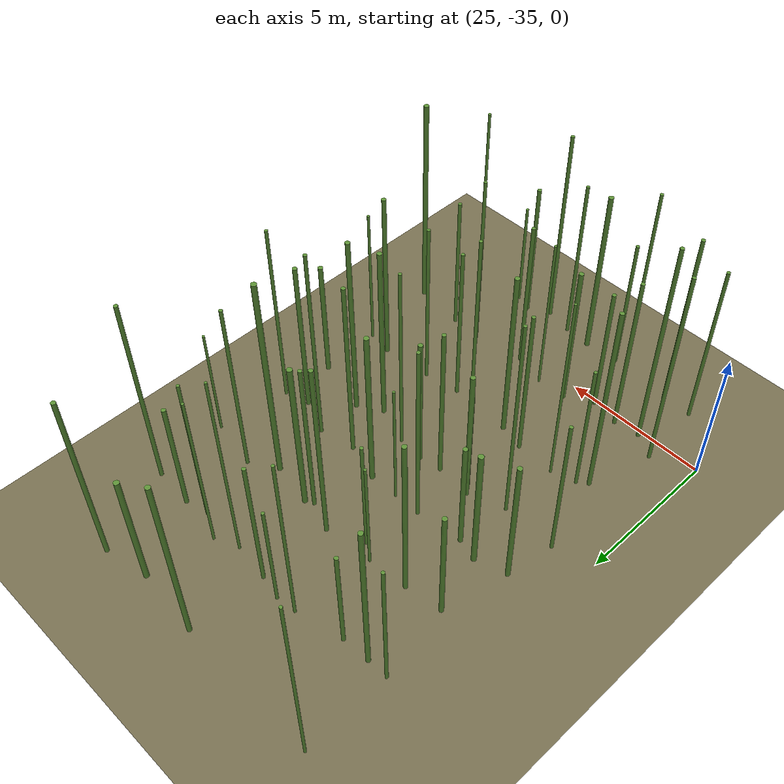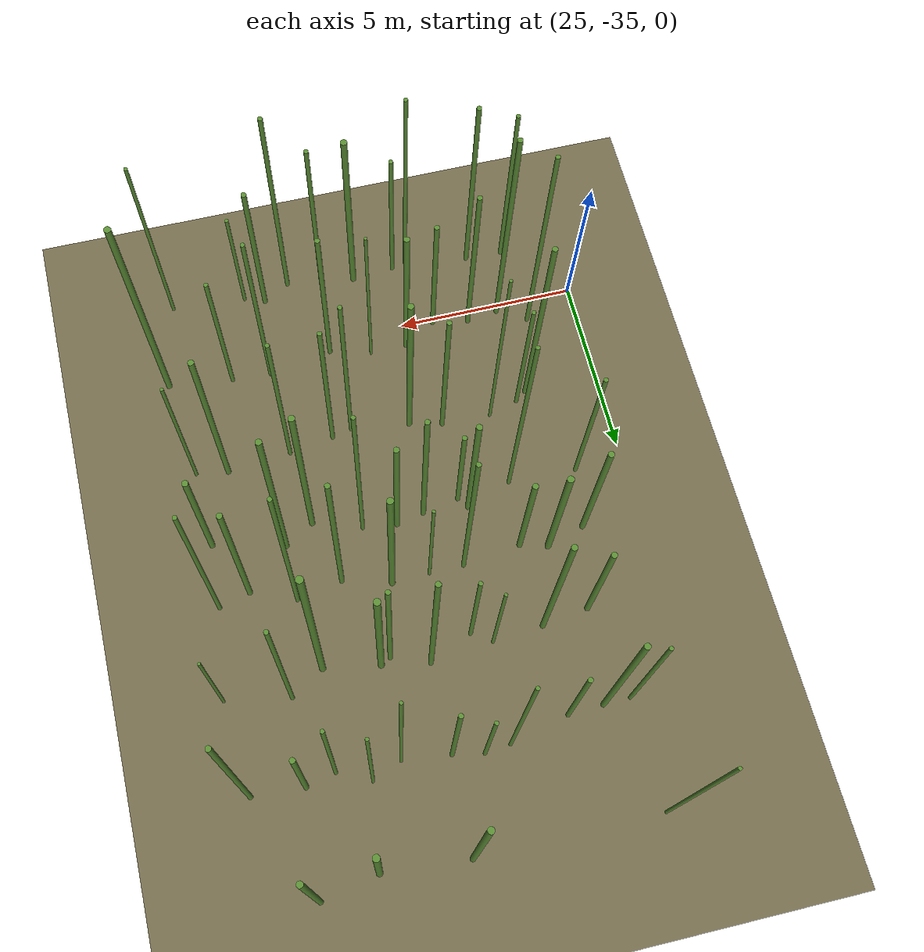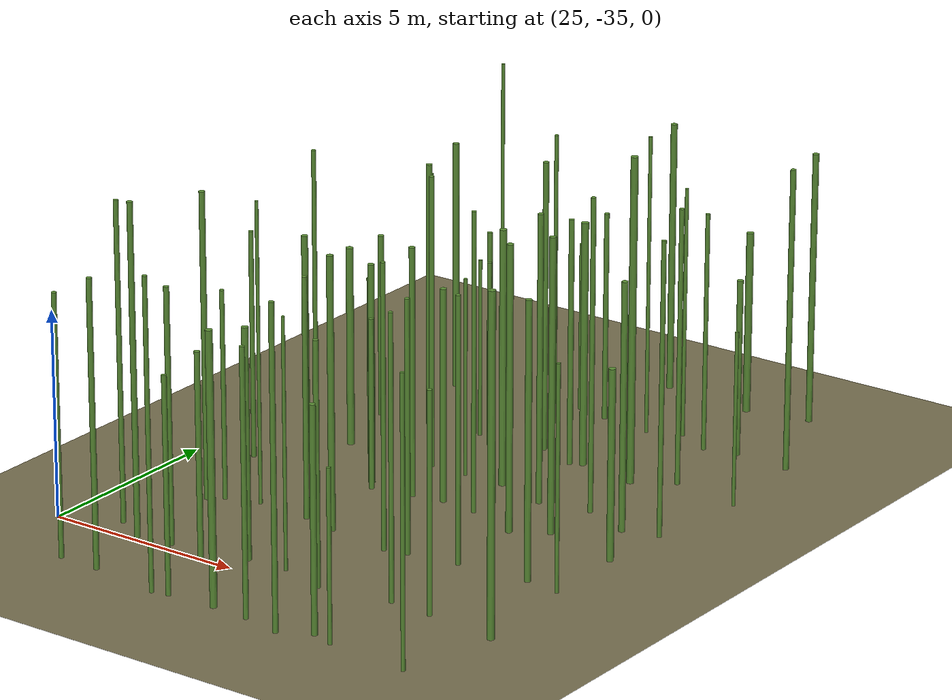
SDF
<sdf version="1.9">
 <world name="bamboo_field">
  <model name="ground_plane">
   <static>true</static>
   <link name="link">
    <collision name="collision">
     <geometry><plane><normal>0 0 1</normal><size>80.0 80.0</size></plane></geometry>
    </collision>
    <visual name="visual">
     <geometry><plane><normal>0 0 1</normal><size>80.0 80.0</size></plane></geometry>
     <material><diffuse>0.45 0.42 0.30 1</diffuse></material>
    </visual>
   </link>
  </model>
  <model name="bamboo_56">
   <static>true</static>
   <pose>26.59189843172362 -36.74230886254977 3.153176086993199 0 0 0</pose>
   <link name="link">
    <collision name="collision">
     <geometry>
      <cylinder><radius>0.05925977166723636</radius><length>6.306352173986398</length></cylinder>
     </geometry>
    </collision>
    <visual name="visual">
     <geometry>
      <cylinder><radius>0.05925977166723636</radius><length>6.306352173986398</length></cylinder>
     </geometry>
     <material><diffuse>0.35 0.55 0.20 1</diffuse><specular>0.1 0.1 0.1 1</specular></material>
    </visual>
   </link>
  </model>
  <model name="bamboo_57">
   <static>true</static>
   <pose>27.6336342432017 -36.769018608130594 3.438859998289691 0 0 0</pose>
   <link name="link">
    <collision name="collision">
     <geometry>
      <cylinder><radius>0.0669225998546396</radius><length>6.877719996579382</length></cylinder>
     </geometry>
    </collision>
    <visual name="visual">
     <geometry>
      <cylinder><radius>0.0669225998546396</radius><length>6.877719996579382</length></cylinder>
     </geometry>
     <material><diffuse>0.35 0.55 0.20 1</diffuse><specular>0.1 0.1 0.1 1</specular></material>
    </visual>
   </link>
  </model>
  <model name="bamboo_58">
   <static>true</static>
   <pose>29.429480835500843 -37.02823297348581 3.696030559012671 0 0 0</pose>
   <link name="link">
    <collision name="collision">
     <geometry>
      <cylinder><radius>0.055695782252917984</radius><length>7.392061118025342</length></cylinder>
     </geometry>
    </collision>
    <visual name="visual">
     <geometry>
      <cylinder><radius>0.055695782252917984</radius><length>7.392061118025342</length></cylinder>
     </geometry>
     <material><diffuse>0.35 0.55 0.20 1</diffuse><specular>0.1 0.1 0.1 1</specular></material>
    </visual>
   </link>
  </model>
  <model name="bamboo_59">
   <static>true</static>
   <pose>29.838468175615947 -36.94414612759265 2.5913104050518943 0 0 0</pose>
   <link name="link">
    <collision name="collision">
     <geometry>
      <cylinder><radius>0.06012001935288623</radius><length>5.1826208101037885</length></cylinder>
     </geometry>
    </collision>
    <visual name="visual">
     <geometry>
      <cylinder><radius>0.06012001935288623</radius><length>5.1826208101037885</length></cylinder>
     </geometry>
     <material><diffuse>0.35 0.55 0.20 1</diffuse><specular>0.1 0.1 0.1 1</specular></material>
    </visual>
   </link>
  </model>
  <model name="bamboo_60">
   <static>true</static>
   <pose>31.03617709676251 -36.8549025120387 3.2310298319027613 0 0 0</pose>
   <link name="link">
    <collision name="collision">
     <geometry>
      <cylinder><radius>0.08514027728662912</radius><length>6.4620596638055225</length></cylinder>
     </geometry>
    </collision>
    <visual name="visual">
     <geometry>
      <cylinder><radius>0.08514027728662912</radius><length>6.4620596638055225</length></cylinder>
     </geometry>
     <material><diffuse>0.35 0.55 0.20 1</diffuse><specular>0.1 0.1 0.1 1</specular></material>
    </visual>
   </link>
  </model>
  <model name="bamboo_61">
   <static>true</static>
   <pose>31.98396849703768 -36.91296682806078 3.159969562391364 0 0 0</pose>
   <link name="link">
    <collision name="collision">
     <geometry>
      <cylinder><radius>0.06149440749949173</radius><length>6.319939124782728</length></cylinder>
     </geometry>
    </collision>
    <visual name="visual">
     <geometry>
      <cylinder><radius>0.06149440749949173</radius><length>6.319939124782728</length></cylinder>
     </geometry>
     <material><diffuse>0.35 0.55 0.20 1</diffuse><specular>0.1 0.1 0.1 1</specular></material>
    </visual>
   </link>
  </model>
  <model name="bamboo_62">
   <static>true</static>
   <pose>32.9597558122562 -37.119674583895055 3.8023616516565086 0 0 0</pose>
   <link name="link">
    <collision name="collision">
     <geometry>
      <cylinder><radius>0.06365930929546632</radius><length>7.604723303313017</length></cylinder>
     </geometry>
    </collision>
    <visual name="visual">
     <geometry>
      <cylinder><radius>0.06365930929546632</radius><length>7.604723303313017</length></cylinder>
     </geometry>
     <material><diffuse>0.35 0.55 0.20 1</diffuse><specular>0.1 0.1 0.1 1</specular></material>
    </visual>
   </link>
  </model>
  <model name="bamboo_63">
   <static>true</static>
   <pose>33.709353120033164 -36.71266186495518 2.670376510819602 0 0 0</pose>
   <link name="link">
    <collision name="collision">
     <geometry>
      <cylinder><radius>0.07164704278828979</radius><length>5.340753021639204</length></cylinder>
     </geometry>
    </collision>
    <visual name="visual">
     <geometry>
      <cylinder><radius>0.07164704278828979</radius><length>5.340753021639204</length></cylinder>
     </geometry>
     <material><diffuse>0.35 0.55 0.20 1</diffuse><specular>0.1 0.1 0.1 1</specular></material>
    </visual>
   </link>
  </model>
  <model name="bamboo_64">
   <static>true</static>
   <pose>34.27696474393521 -36.90586312028053 2.0488507754536527 0 0 0</pose>
   <link name="link">
    <collision name="collision">
     <geometry>
      <cylinder><radius>0.04995649663632883</radius><length>4.097701550907305</length></cylinder>
     </geometry>
    </collision>
    <visual name="visual">
     <geometry>
      <cylinder><radius>0.04995649663632883</radius><length>4.097701550907305</length></cylinder>
     </geometry>
     <material><diffuse>0.35 0.55 0.20 1</diffuse><specular>0.1 0.1 0.1 1</specular></material>
    </visual>
   </link>
  </model>
  <model name="bamboo_65">
   <static>true</static>
   <pose>36.35731046363665 -37.06766945352879 3.39270850098101 0 0 0</pose>
   <link name="link">
    <collision name="collision">
     <geometry>
      <cylinder><radius>0.04972176183698546</radius><length>6.78541700196202</length></cylinder>
     </geometry>
    </collision>
    <visual name="visual">
     <geometry>
      <cylinder><radius>0.04972176183698546</radius><length>6.78541700196202</length></cylinder>
     </geometry>
     <material><diffuse>0.35 0.55 0.20 1</diffuse><specular>0.1 0.1 0.1 1</specular></material>
    </visual>
   </link>
  </model>
  <model name="bamboo_123">
   <static>true</static>
   <pose>26.41332882305101 -34.371516896592496 3.86849678736504 0 0 0</pose>
   <link name="link">
    <collision name="collision">
     <geometry>
      <cylinder><radius>0.060747121177567254</radius><length>7.73699357473008</length></cylinder>
     </geometry>
    </collision>
    <visual name="visual">
     <geometry>
      <cylinder><radius>0.060747121177567254</radius><length>7.73699357473008</length></cylinder>
     </geometry>
     <material><diffuse>0.35 0.55 0.20 1</diffuse><specular>0.1 0.1 0.1 1</specular></material>
    </visual>
   </link>
  </model>
  <model name="bamboo_124">
   <static>true</static>
   <pose>27.213796285956374 -34.84188473495445 3.9978046664586775 0 0 0</pose>
   <link name="link">
    <collision name="collision">
     <geometry>
      <cylinder><radius>0.06934688612070805</radius><length>7.995609332917355</length></cylinder>
     </geometry>
    </collision>
    <visual name="visual">
     <geometry>
      <cylinder><radius>0.06934688612070805</radius><length>7.995609332917355</length></cylinder>
     </geometry>
     <material><diffuse>0.35 0.55 0.20 1</diffuse><specular>0.1 0.1 0.1 1</specular></material>
    </visual>
   </link>
  </model>
  <model name="bamboo_125">
   <static>true</static>
   <pose>28.105221506185483 -34.720657382662075 3.086860125917346 0 0 0</pose>
   <link name="link">
    <collision name="collision">
     <geometry>
      <cylinder><radius>0.06759587085354055</radius><length>6.173720251834692</length></cylinder>
     </geometry>
    </collision>
    <visual name="visual">
     <geometry>
      <cylinder><radius>0.06759587085354055</radius><length>6.173720251834692</length></cylinder>
     </geometry>
     <material><diffuse>0.35 0.55 0.20 1</diffuse><specular>0.1 0.1 0.1 1</specular></material>
    </visual>
   </link>
  </model>
  <model name="bamboo_126">
   <static>true</static>
   <pose>29.104822356431256 -34.915348418454286 2.4671248921157862 0 0 0</pose>
   <link name="link">
    <collision name="collision">
     <geometry>
      <cylinder><radius>0.06858988209924505</radius><length>4.9342497842315725</length></cylinder>
     </geometry>
    </collision>
    <visual name="visual">
     <geometry>
      <cylinder><radius>0.06858988209924505</radius><length>4.9342497842315725</length></cylinder>
     </geometry>
     <material><diffuse>0.35 0.55 0.20 1</diffuse><specular>0.1 0.1 0.1 1</specular></material>
    </visual>
   </link>
  </model>
  <model name="bamboo_127">
   <static>true</static>
   <pose>30.02440546512703 -34.37137824162571 2.7721575049819647 0 0 0</pose>
   <link name="link">
    <collision name="collision">
     <geometry>
      <cylinder><radius>0.08057044512824385</radius><length>5.544315009963929</length></cylinder>
     </geometry>
    </collision>
    <visual name="visual">
     <geometry>
      <cylinder><radius>0.08057044512824385</radius><length>5.544315009963929</length></cylinder>
     </geometry>
     <material><diffuse>0.35 0.55 0.20 1</diffuse><specular>0.1 0.1 0.1 1</specular></material>
    </visual>
   </link>
  </model>
  <model name="bamboo_128">
   <static>true</static>
   <pose>31.065276840468464 -34.33711130846885 3.0045823002659318 0 0 0</pose>
   <link name="link">
    <collision name="collision">
     <geometry>
      <cylinder><radius>0.04185098056727881</radius><length>6.0091646005318635</length></cylinder>
     </geometry>
    </collision>
    <visual name="visual">
     <geometry>
      <cylinder><radius>0.04185098056727881</radius><length>6.0091646005318635</length></cylinder>
     </geometry>
     <material><diffuse>0.35 0.55 0.20 1</diffuse><specular>0.1 0.1 0.1 1</specular></material>
    </visual>
   </link>
  </model>
  <model name="bamboo_129">
   <static>true</static>
   <pose>32.20753736887294 -34.658916493999946 2.9138561489484847 0 0 0</pose>
   <link name="link">
    <collision name="collision">
     <geometry>
      <cylinder><radius>0.06629755434037807</radius><length>5.827712297896969</length></cylinder>
     </geometry>
    </collision>
    <visual name="visual">
     <geometry>
      <cylinder><radius>0.06629755434037807</radius><length>5.827712297896969</length></cylinder>
     </geometry>
     <material><diffuse>0.35 0.55 0.20 1</diffuse><specular>0.1 0.1 0.1 1</specular></material>
    </visual>
   </link>
  </model>
  <model name="bamboo_130">
   <static>true</static>
   <pose>34.00642111734396 -34.34966582317691 3.385409197173764 0 0 0</pose>
   <link name="link">
    <collision name="collision">
     <geometry>
      <cylinder><radius>0.056928061702571586</radius><length>6.770818394347528</length></cylinder>
     </geometry>
    </collision>
    <visual name="visual">
     <geometry>
      <cylinder><radius>0.056928061702571586</radius><length>6.770818394347528</length></cylinder>
     </geometry>
     <material><diffuse>0.35 0.55 0.20 1</diffuse><specular>0.1 0.1 0.1 1</specular></material>
    </visual>
   </link>
  </model>
  <model name="bamboo_131">
   <static>true</static>
   <pose>35.09557419282091 -34.414320261288346 2.6333223078667993 0 0 0</pose>
   <link name="link">
    <collision name="collision">
     <geometry>
      <cylinder><radius>0.05900046987613275</radius><length>5.266644615733599</length></cylinder>
     </geometry>
    </collision>
    <visual name="visual">
     <geometry>
      <cylinder><radius>0.05900046987613275</radius><length>5.266644615733599</length></cylinder>
     </geometry>
     <material><diffuse>0.35 0.55 0.20 1</diffuse><specular>0.1 0.1 0.1 1</specular></material>
    </visual>
   </link>
  </model>
  <model name="bamboo_132">
   <static>true</static>
   <pose>36.89152995771341 -34.64212149747621 3.9948518459124305 0 0 0</pose>
   <link name="link">
    <collision name="collision">
     <geometry>
      <cylinder><radius>0.08604645493901483</radius><length>7.989703691824861</length></cylinder>
     </geometry>
    </collision>
    <visual name="visual">
     <geometry>
      <cylinder><radius>0.08604645493901483</radius><length>7.989703691824861</length></cylinder>
     </geometry>
     <material><diffuse>0.35 0.55 0.20 1</diffuse><specular>0.1 0.1 0.1 1</specular></material>
    </visual>
   </link>
  </model>
  <model name="bamboo_190">
   <static>true</static>
   <pose>27.06892133610609 -32.16269084478788 3.7284937496628325 0 0 0</pose>
   <link name="link">
    <collision name="collision">
     <geometry>
      <cylinder><radius>0.07122608897209473</radius><length>7.456987499325665</length></cylinder>
     </geometry>
    </collision>
    <visual name="visual">
     <geometry>
      <cylinder><radius>0.07122608897209473</radius><length>7.456987499325665</length></cylinder>
     </geometry>
     <material><diffuse>0.35 0.55 0.20 1</diffuse><specular>0.1 0.1 0.1 1</specular></material>
    </visual>
   </link>
  </model>
  <model name="bamboo_191">
   <static>true</static>
   <pose>27.396504138823705 -31.91322520606019 2.5493473349723184 0 0 0</pose>
   <link name="link">
    <collision name="collision">
     <geometry>
      <cylinder><radius>0.055141021756950646</radius><length>5.098694669944637</length></cylinder>
     </geometry>
    </collision>
    <visual name="visual">
     <geometry>
      <cylinder><radius>0.055141021756950646</radius><length>5.098694669944637</length></cylinder>
     </geometry>
     <material><diffuse>0.35 0.55 0.20 1</diffuse><specular>0.1 0.1 0.1 1</specular></material>
    </visual>
   </link>
  </model>
  <model name="bamboo_192">
   <static>true</static>
   <pose>28.235058495738496 -31.663386002015365 3.6633932633262427 0 0 0</pose>
   <link name="link">
    <collision name="collision">
     <geometry>
      <cylinder><radius>0.04284450254169762</radius><length>7.326786526652485</length></cylinder>
     </geometry>
    </collision>
    <visual name="visual">
     <geometry>
      <cylinder><radius>0.04284450254169762</radius><length>7.326786526652485</length></cylinder>
     </geometry>
     <material><diffuse>0.35 0.55 0.20 1</diffuse><specular>0.1 0.1 0.1 1</specular></material>
    </visual>
   </link>
  </model>
  <model name="bamboo_193">
   <static>true</static>
   <pose>29.61148560343633 -31.714088567677283 2.925423317854545 0 0 0</pose>
   <link name="link">
    <collision name="collision">
     <geometry>
      <cylinder><radius>0.06535339086669775</radius><length>5.85084663570909</length></cylinder>
     </geometry>
    </collision>
    <visual name="visual">
     <geometry>
      <cylinder><radius>0.06535339086669775</radius><length>5.85084663570909</length></cylinder>
     </geometry>
     <material><diffuse>0.35 0.55 0.20 1</diffuse><specular>0.1 0.1 0.1 1</specular></material>
    </visual>
   </link>
  </model>
  <model name="bamboo_194">
   <static>true</static>
   <pose>30.506883583738535 -31.935420706202883 3.3036749092972197 0 0 0</pose>
   <link name="link">
    <collision name="collision">
     <geometry>
      <cylinder><radius>0.08049079588489855</radius><length>6.6073498185944395</length></cylinder>
     </geometry>
    </collision>
    <visual name="visual">
     <geometry>
      <cylinder><radius>0.08049079588489855</radius><length>6.6073498185944395</length></cylinder>
     </geometry>
     <material><diffuse>0.35 0.55 0.20 1</diffuse><specular>0.1 0.1 0.1 1</specular></material>
    </visual>
   </link>
  </model>
  <model name="bamboo_195">
   <static>true</static>
   <pose>32.13674433235932 -32.147569787757575 3.4286310983349253 0 0 0</pose>
   <link name="link">
    <collision name="collision">
     <geometry>
      <cylinder><radius>0.05717188879191338</radius><length>6.857262196669851</length></cylinder>
     </geometry>
    </collision>
    <visual name="visual">
     <geometry>
      <cylinder><radius>0.05717188879191338</radius><length>6.857262196669851</length></cylinder>
     </geometry>
     <material><diffuse>0.35 0.55 0.20 1</diffuse><specular>0.1 0.1 0.1 1</specular></material>
    </visual>
   </link>
  </model>
  <model name="bamboo_196">
   <static>true</static>
   <pose>32.693779866335035 -32.0073646382921 3.045496070531091 0 0 0</pose>
   <link name="link">
    <collision name="collision">
     <geometry>
      <cylinder><radius>0.06197108958813122</radius><length>6.090992141062182</length></cylinder>
     </geometry>
    </collision>
    <visual name="visual">
     <geometry>
      <cylinder><radius>0.06197108958813122</radius><length>6.090992141062182</length></cylinder>
     </geometry>
     <material><diffuse>0.35 0.55 0.20 1</diffuse><specular>0.1 0.1 0.1 1</specular></material>
    </visual>
   </link>
  </model>
  <model name="bamboo_197">
   <static>true</static>
   <pose>33.94827380428829 -31.81524727588452 3.195771724765979 0 0 0</pose>
   <link name="link">
    <collision name="collision">
     <geometry>
      <cylinder><radius>0.05691835734207098</radius><length>6.391543449531958</length></cylinder>
     </geometry>
    </collision>
    <visual name="visual">
     <geometry>
      <cylinder><radius>0.05691835734207098</radius><length>6.391543449531958</length></cylinder>
     </geometry>
     <material><diffuse>0.35 0.55 0.20 1</diffuse><specular>0.1 0.1 0.1 1</specular></material>
    </visual>
   </link>
  </model>
  <model name="bamboo_198">
   <static>true</static>
   <pose>35.72797131985622 -31.657065262320657 3.3131281728209556 0 0 0</pose>
   <link name="link">
    <collision name="collision">
     <geometry>
      <cylinder><radius>0.07618668275012308</radius><length>6.626256345641911</length></cylinder>
     </geometry>
    </collision>
    <visual name="visual">
     <geometry>
      <cylinder><radius>0.07618668275012308</radius><length>6.626256345641911</length></cylinder>
     </geometry>
     <material><diffuse>0.35 0.55 0.20 1</diffuse><specular>0.1 0.1 0.1 1</specular></material>
    </visual>
   </link>
  </model>
  <model name="bamboo_199">
   <static>true</static>
   <pose>36.604263801650795 -31.779425051794718 2.6996415750716887 0 0 0</pose>
   <link name="link">
    <collision name="collision">
     <geometry>
      <cylinder><radius>0.04707141902921589</radius><length>5.399283150143377</length></cylinder>
     </geometry>
    </collision>
    <visual name="visual">
     <geometry>
      <cylinder><radius>0.04707141902921589</radius><length>5.399283150143377</length></cylinder>
     </geometry>
     <material><diffuse>0.35 0.55 0.20 1</diffuse><specular>0.1 0.1 0.1 1</specular></material>
    </visual>
   </link>
  </model>
  <model name="bamboo_259">
   <static>true</static>
   <pose>26.341947357377364 -29.52273920398375 2.801163242029513 0 0 0</pose>
   <link name="link">
    <collision name="collision">
     <geometry>
      <cylinder><radius>0.05829686762587815</radius><length>5.602326484059026</length></cylinder>
     </geometry>
    </collision>
    <visual name="visual">
     <geometry>
      <cylinder><radius>0.05829686762587815</radius><length>5.602326484059026</length></cylinder>
     </geometry>
     <material><diffuse>0.35 0.55 0.20 1</diffuse><specular>0.1 0.1 0.1 1</specular></material>
    </visual>
   </link>
  </model>
  <model name="bamboo_260">
   <static>true</static>
   <pose>28.242020637041588 -29.57583020149864 3.978181401241445 0 0 0</pose>
   <link name="link">
    <collision name="collision">
     <geometry><cylinder><radius>0.0539860338811991</radius><length>7.95636280248289</length></cylinder></geometry>
    </collision>
    <visual name="visual">
     <geometry><cylinder><radius>0.0539860338811991</radius><length>7.95636280248289</length></cylinder></geometry>
     <material><diffuse>0.35 0.55 0.20 1</diffuse><specular>0.1 0.1 0.1 1</specular></material>
    </visual>
   </link>
  </model>
  <model name="bamboo_261">
   <static>true</static>
   <pose>29.513038711992664 -29.130522294700196 2.6781705999051306 0 0 0</pose>
   <link name="link">
    <collision name="collision">
     <geometry>
      <cylinder><radius>0.0797448614190473</radius><length>5.356341199810261</length></cylinder>
     </geometry>
    </collision>
    <visual name="visual">
     <geometry>
      <cylinder><radius>0.0797448614190473</radius><length>5.356341199810261</length></cylinder>
     </geometry>
     <material><diffuse>0.35 0.55 0.20 1</diffuse><specular>0.1 0.1 0.1 1</specular></material>
    </visual>
   </link>
  </model>
  <model name="bamboo_262">
   <static>true</static>
   <pose>29.731323329242148 -29.425869421558215 2.0906067049341495 0 0 0</pose>
   <link name="link">
    <collision name="collision">
     <geometry>
      <cylinder><radius>0.0650038951785322</radius><length>4.181213409868299</length></cylinder>
     </geometry>
    </collision>
    <visual name="visual">
     <geometry>
      <cylinder><radius>0.0650038951785322</radius><length>4.181213409868299</length></cylinder>
     </geometry>
     <material><diffuse>0.35 0.55 0.20 1</diffuse><specular>0.1 0.1 0.1 1</specular></material>
    </visual>
   </link>
  </model>
  <model name="bamboo_263">
   <static>true</static>
   <pose>30.754471621248527 -29.229850230559876 3.031011464294508 0 0 0</pose>
   <link name="link">
    <collision name="collision">
     <geometry>
      <cylinder><radius>0.0703130261201902</radius><length>6.062022928589016</length></cylinder>
     </geometry>
    </collision>
    <visual name="visual">
     <geometry>
      <cylinder><radius>0.0703130261201902</radius><length>6.062022928589016</length></cylinder>
     </geometry>
     <material><diffuse>0.35 0.55 0.20 1</diffuse><specular>0.1 0.1 0.1 1</specular></material>
    </visual>
   </link>
  </model>
  <model name="bamboo_264">
   <static>true</static>
   <pose>31.525357762759906 -29.079195345134988 2.5984686850566368 0 0 0</pose>
   <link name="link">
    <collision name="collision">
     <geometry>
      <cylinder><radius>0.0769659680286802</radius><length>5.1969373701132735</length></cylinder>
     </geometry>
    </collision>
    <visual name="visual">
     <geometry>
      <cylinder><radius>0.0769659680286802</radius><length>5.1969373701132735</length></cylinder>
     </geometry>
     <material><diffuse>0.35 0.55 0.20 1</diffuse><specular>0.1 0.1 0.1 1</specular></material>
    </visual>
   </link>
  </model>
  <model name="bamboo_265">
   <static>true</static>
   <pose>32.46068274511012 -29.18733344057404 3.6314976664876486 0 0 0</pose>
   <link name="link">
    <collision name="collision">
     <geometry>
      <cylinder><radius>0.054989528236870686</radius><length>7.262995332975297</length></cylinder>
     </geometry>
    </collision>
    <visual name="visual">
     <geometry>
      <cylinder><radius>0.054989528236870686</radius><length>7.262995332975297</length></cylinder>
     </geometry>
     <material><diffuse>0.35 0.55 0.20 1</diffuse><specular>0.1 0.1 0.1 1</specular></material>
    </visual>
   </link>
  </model>
  <model name="bamboo_266">
   <static>true</static>
   <pose>33.77642204651768 -29.640344906830467 3.4506484251037106 0 0 0</pose>
   <link name="link">
    <collision name="collision">
     <geometry>
      <cylinder><radius>0.07983774069650736</radius><length>6.901296850207421</length></cylinder>
     </geometry>
    </collision>
    <visual name="visual">
     <geometry>
      <cylinder><radius>0.07983774069650736</radius><length>6.901296850207421</length></cylinder>
     </geometry>
     <material><diffuse>0.35 0.55 0.20 1</diffuse><specular>0.1 0.1 0.1 1</specular></material>
    </visual>
   </link>
  </model>
  <model name="bamboo_267">
   <static>true</static>
   <pose>34.588971653414696 -29.154017836697736 3.5523240503441444 0 0 0</pose>
   <link name="link">
    <collision name="collision">
     <geometry>
      <cylinder><radius>0.07914519957157107</radius><length>7.104648100688289</length></cylinder>
     </geometry>
    </collision>
    <visual name="visual">
     <geometry>
      <cylinder><radius>0.07914519957157107</radius><length>7.104648100688289</length></cylinder>
     </geometry>
     <material><diffuse>0.35 0.55 0.20 1</diffuse><specular>0.1 0.1 0.1 1</specular></material>
    </visual>
   </link>
  </model>
  <model name="bamboo_268">
   <static>true</static>
   <pose>36.54615581012245 -29.636898555965683 2.295551416600664 0 0 0</pose>
   <link name="link">
    <collision name="collision">
     <geometry>
      <cylinder><radius>0.08205835624791322</radius><length>4.591102833201328</length></cylinder>
     </geometry>
    </collision>
    <visual name="visual">
     <geometry>
      <cylinder><radius>0.08205835624791322</radius><length>4.591102833201328</length></cylinder>
     </geometry>
     <material><diffuse>0.35 0.55 0.20 1</diffuse><specular>0.1 0.1 0.1 1</specular></material>
    </visual>
   </link>
  </model>
  <model name="bamboo_333">
   <static>true</static>
   <pose>26.615359106754195 -27.867176359727672 2.5346494733532716 0 0 0</pose>
   <link name="link">
    <collision name="collision">
     <geometry>
      <cylinder><radius>0.08076071953566413</radius><length>5.069298946706543</length></cylinder>
     </geometry>
    </collision>
    <visual name="visual">
     <geometry>
      <cylinder><radius>0.08076071953566413</radius><length>5.069298946706543</length></cylinder>
     </geometry>
     <material><diffuse>0.35 0.55 0.20 1</diffuse><specular>0.1 0.1 0.1 1</specular></material>
    </visual>
   </link>
  </model>
  <model name="bamboo_334">
   <static>true</static>
   <pose>27.678771712784368 -27.534805496730176 2.451714505254844 0 0 0</pose>
   <link name="link">
    <collision name="collision">
     <geometry>
      <cylinder><radius>0.08951165158198636</radius><length>4.903429010509688</length></cylinder>
     </geometry>
    </collision>
    <visual name="visual">
     <geometry>
      <cylinder><radius>0.08951165158198636</radius><length>4.903429010509688</length></cylinder>
     </geometry>
     <material><diffuse>0.35 0.55 0.20 1</diffuse><specular>0.1 0.1 0.1 1</specular></material>
    </visual>
   </link>
  </model>
  <model name="bamboo_335">
   <static>true</static>
   <pose>28.42692167834663 -27.741421460481465 2.187001010854219 0 0 0</pose>
   <link name="link">
    <collision name="collision">
     <geometry>
      <cylinder><radius>0.07797929250884224</radius><length>4.374002021708438</length></cylinder>
     </geometry>
    </collision>
    <visual name="visual">
     <geometry>
      <cylinder><radius>0.07797929250884224</radius><length>4.374002021708438</length></cylinder>
     </geometry>
     <material><diffuse>0.35 0.55 0.20 1</diffuse><specular>0.1 0.1 0.1 1</specular></material>
    </visual>
   </link>
  </model>
  <model name="bamboo_336">
   <static>true</static>
   <pose>30.04853590808449 -27.52774024879768 3.5687526215802223 0 0 0</pose>
   <link name="link">
    <collision name="collision">
     <geometry>
      <cylinder><radius>0.06169548259858311</radius><length>7.137505243160445</length></cylinder>
     </geometry>
    </collision>
    <visual name="visual">
     <geometry>
      <cylinder><radius>0.06169548259858311</radius><length>7.137505243160445</length></cylinder>
     </geometry>
     <material><diffuse>0.35 0.55 0.20 1</diffuse><specular>0.1 0.1 0.1 1</specular></material>
    </visual>
   </link>
  </model>
  <model name="bamboo_337">
   <static>true</static>
   <pose>30.998262826114182 -27.507024453228105 2.4228341117690944 0 0 0</pose>
   <link name="link">
    <collision name="collision">
     <geometry>
      <cylinder><radius>0.04212758788085225</radius><length>4.845668223538189</length></cylinder>
     </geometry>
    </collision>
    <visual name="visual">
     <geometry>
      <cylinder><radius>0.04212758788085225</radius><length>4.845668223538189</length></cylinder>
     </geometry>
     <material><diffuse>0.35 0.55 0.20 1</diffuse><specular>0.1 0.1 0.1 1</specular></material>
    </visual>
   </link>
  </model>
  <model name="bamboo_338">
   <static>true</static>
   <pose>32.03355158784286 -27.478176015273988 3.1270197280959673 0 0 0</pose>
   <link name="link">
    <collision name="collision">
     <geometry>
      <cylinder><radius>0.08496558254325043</radius><length>6.254039456191935</length></cylinder>
     </geometry>
    </collision>
    <visual name="visual">
     <geometry>
      <cylinder><radius>0.08496558254325043</radius><length>6.254039456191935</length></cylinder>
     </geometry>
     <material><diffuse>0.35 0.55 0.20 1</diffuse><specular>0.1 0.1 0.1 1</specular></material>
    </visual>
   </link>
  </model>
  <model name="bamboo_339">
   <static>true</static>
   <pose>33.33521219899064 -27.849505253875666 3.5045089396937303 0 0 0</pose>
   <link name="link">
    <collision name="collision">
     <geometry>
      <cylinder><radius>0.06935180520422442</radius><length>7.009017879387461</length></cylinder>
     </geometry>
    </collision>
    <visual name="visual">
     <geometry>
      <cylinder><radius>0.06935180520422442</radius><length>7.009017879387461</length></cylinder>
     </geometry>
     <material><diffuse>0.35 0.55 0.20 1</diffuse><specular>0.1 0.1 0.1 1</specular></material>
    </visual>
   </link>
  </model>
  <model name="bamboo_340">
   <static>true</static>
   <pose>34.59548898105962 -27.599385982987627 3.7930515340054396 0 0 0</pose>
   <link name="link">
    <collision name="collision">
     <geometry>
      <cylinder><radius>0.05945783036836794</radius><length>7.586103068010879</length></cylinder>
     </geometry>
    </collision>
    <visual name="visual">
     <geometry>
      <cylinder><radius>0.05945783036836794</radius><length>7.586103068010879</length></cylinder>
     </geometry>
     <material><diffuse>0.35 0.55 0.20 1</diffuse><specular>0.1 0.1 0.1 1</specular></material>
    </visual>
   </link>
  </model>
  <model name="bamboo_341">
   <static>true</static>
   <pose>35.801284660223615 -28.090724965789075 3.0015857032754503 0 0 0</pose>
   <link name="link">
    <collision name="collision">
     <geometry>
      <cylinder><radius>0.07620817850471574</radius><length>6.0031714065509005</length></cylinder>
     </geometry>
    </collision>
    <visual name="visual">
     <geometry>
      <cylinder><radius>0.07620817850471574</radius><length>6.0031714065509005</length></cylinder>
     </geometry>
     <material><diffuse>0.35 0.55 0.20 1</diffuse><specular>0.1 0.1 0.1 1</specular></material>
    </visual>
   </link>
  </model>
  <model name="bamboo_342">
   <static>true</static>
   <pose>36.66249450999609 -27.85062033363598 3.5380113067308847 0 0 0</pose>
   <link name="link">
    <collision name="collision">
     <geometry>
      <cylinder><radius>0.057029637323755294</radius><length>7.076022613461769</length></cylinder>
     </geometry>
    </collision>
    <visual name="visual">
     <geometry>
      <cylinder><radius>0.057029637323755294</radius><length>7.076022613461769</length></cylinder>
     </geometry>
     <material><diffuse>0.35 0.55 0.20 1</diffuse><specular>0.1 0.1 0.1 1</specular></material>
    </visual>
   </link>
  </model>
  <model name="bamboo_402">
   <static>true</static>
   <pose>27.13162760251858 -25.60702819710298 2.2662924623724243 0 0 0</pose>
   <link name="link">
    <collision name="collision">
     <geometry>
      <cylinder><radius>0.0776578900495534</radius><length>4.532584924744849</length></cylinder>
     </geometry>
    </collision>
    <visual name="visual">
     <geometry>
      <cylinder><radius>0.0776578900495534</radius><length>4.532584924744849</length></cylinder>
     </geometry>
     <material><diffuse>0.35 0.55 0.20 1</diffuse><specular>0.1 0.1 0.1 1</specular></material>
    </visual>
   </link>
  </model>
  <model name="bamboo_403">
   <static>true</static>
   <pose>28.414742781318903 -25.418828417835634 3.2561600766818053 0 0 0</pose>
   <link name="link">
    <collision name="collision">
     <geometry>
      <cylinder><radius>0.07612160131821612</radius><length>6.512320153363611</length></cylinder>
     </geometry>
    </collision>
    <visual name="visual">
     <geometry>
      <cylinder><radius>0.07612160131821612</radius><length>6.512320153363611</length></cylinder>
     </geometry>
     <material><diffuse>0.35 0.55 0.20 1</diffuse><specular>0.1 0.1 0.1 1</specular></material>
    </visual>
   </link>
  </model>
  <model name="bamboo_404">
   <static>true</static>
   <pose>29.81011931026177 -25.294323601454348 2.2009302249552776 0 0 0</pose>
   <link name="link">
    <collision name="collision">
     <geometry>
      <cylinder><radius>0.044334401673299426</radius><length>4.401860449910555</length></cylinder>
     </geometry>
    </collision>
    <visual name="visual">
     <geometry>
      <cylinder><radius>0.044334401673299426</radius><length>4.401860449910555</length></cylinder>
     </geometry>
     <material><diffuse>0.35 0.55 0.20 1</diffuse><specular>0.1 0.1 0.1 1</specular></material>
    </visual>
   </link>
  </model>
  <model name="bamboo_405">
   <static>true</static>
   <pose>30.330897481276843 -25.648051242688815 2.2796603776184674 0 0 0</pose>
   <link name="link">
    <collision name="collision">
     <geometry>
      <cylinder><radius>0.05572518340910847</radius><length>4.559320755236935</length></cylinder>
     </geometry>
    </collision>
    <visual name="visual">
     <geometry>
      <cylinder><radius>0.05572518340910847</radius><length>4.559320755236935</length></cylinder>
     </geometry>
     <material><diffuse>0.35 0.55 0.20 1</diffuse><specular>0.1 0.1 0.1 1</specular></material>
    </visual>
   </link>
  </model>
  <model name="bamboo_406">
   <static>true</static>
   <pose>31.5417120266396 -25.113500870779436 3.55793930502652 0 0 0</pose>
   <link name="link">
    <collision name="collision">
     <geometry>
      <cylinder><radius>0.07037965494577617</radius><length>7.11587861005304</length></cylinder>
     </geometry>
    </collision>
    <visual name="visual">
     <geometry>
      <cylinder><radius>0.07037965494577617</radius><length>7.11587861005304</length></cylinder>
     </geometry>
     <material><diffuse>0.35 0.55 0.20 1</diffuse><specular>0.1 0.1 0.1 1</specular></material>
    </visual>
   </link>
  </model>
  <model name="bamboo_407">
   <static>true</static>
   <pose>32.54523147085027 -25.50014590801796 3.019045132229425 0 0 0</pose>
   <link name="link">
    <collision name="collision">
     <geometry>
      <cylinder><radius>0.06588745638986188</radius><length>6.03809026445885</length></cylinder>
     </geometry>
    </collision>
    <visual name="visual">
     <geometry>
      <cylinder><radius>0.06588745638986188</radius><length>6.03809026445885</length></cylinder>
     </geometry>
     <material><diffuse>0.35 0.55 0.20 1</diffuse><specular>0.1 0.1 0.1 1</specular></material>
    </visual>
   </link>
  </model>
  <model name="bamboo_408">
   <static>true</static>
   <pose>32.822489138392164 -25.357317564996546 2.9897754398865337 0 0 0</pose>
   <link name="link">
    <collision name="collision">
     <geometry>
      <cylinder><radius>0.08773357556735764</radius><length>5.979550879773067</length></cylinder>
     </geometry>
    </collision>
    <visual name="visual">
     <geometry>
      <cylinder><radius>0.08773357556735764</radius><length>5.979550879773067</length></cylinder>
     </geometry>
     <material><diffuse>0.35 0.55 0.20 1</diffuse><specular>0.1 0.1 0.1 1</specular></material>
    </visual>
   </link>
  </model>
  <model name="bamboo_409">
   <static>true</static>
   <pose>34.334887562996535 -25.614637327374517 3.973765065686378 0 0 0</pose>
   <link name="link">
    <collision name="collision">
     <geometry>
      <cylinder><radius>0.08888484739216677</radius><length>7.947530131372756</length></cylinder>
     </geometry>
    </collision>
    <visual name="visual">
     <geometry>
      <cylinder><radius>0.08888484739216677</radius><length>7.947530131372756</length></cylinder>
     </geometry>
     <material><diffuse>0.35 0.55 0.20 1</diffuse><specular>0.1 0.1 0.1 1</specular></material>
    </visual>
   </link>
  </model>
  <model name="bamboo_410">
   <static>true</static>
   <pose>35.259374239926196 -25.03890825512879 3.3658840980048526 0 0 0</pose>
   <link name="link">
    <collision name="collision">
     <geometry>
      <cylinder><radius>0.058270623142404936</radius><length>6.731768196009705</length></cylinder>
     </geometry>
    </collision>
    <visual name="visual">
     <geometry>
      <cylinder><radius>0.058270623142404936</radius><length>6.731768196009705</length></cylinder>
     </geometry>
     <material><diffuse>0.35 0.55 0.20 1</diffuse><specular>0.1 0.1 0.1 1</specular></material>
    </visual>
   </link>
  </model>
  <model name="bamboo_411">
   <static>true</static>
   <pose>37.0131289300934 -25.35239792089496 2.1209377191764114 0 0 0</pose>
   <link name="link">
    <collision name="collision">
     <geometry>
      <cylinder><radius>0.041991343096859486</radius><length>4.241875438352823</length></cylinder>
     </geometry>
    </collision>
    <visual name="visual">
     <geometry>
      <cylinder><radius>0.041991343096859486</radius><length>4.241875438352823</length></cylinder>
     </geometry>
     <material><diffuse>0.35 0.55 0.20 1</diffuse><specular>0.1 0.1 0.1 1</specular></material>
    </visual>
   </link>
  </model>
  <model name="bamboo_467">
   <static>true</static>
   <pose>26.712643891451794 -23.040771710749215 2.6374338159133153 0 0 0</pose>
   <link name="link">
    <collision name="collision">
     <geometry>
      <cylinder><radius>0.054745430655806504</radius><length>5.2748676318266305</length></cylinder>
     </geometry>
    </collision>
    <visual name="visual">
     <geometry>
      <cylinder><radius>0.054745430655806504</radius><length>5.2748676318266305</length></cylinder>
     </geometry>
     <material><diffuse>0.35 0.55 0.20 1</diffuse><specular>0.1 0.1 0.1 1</specular></material>
    </visual>
   </link>
  </model>
  <model name="bamboo_468">
   <static>true</static>
   <pose>27.443209401892368 -23.027538712219396 3.094092517224463 0 0 0</pose>
   <link name="link">
    <collision name="collision">
     <geometry>
      <cylinder><radius>0.07659925426356584</radius><length>6.188185034448926</length></cylinder>
     </geometry>
    </collision>
    <visual name="visual">
     <geometry>
      <cylinder><radius>0.07659925426356584</radius><length>6.188185034448926</length></cylinder>
     </geometry>
     <material><diffuse>0.35 0.55 0.20 1</diffuse><specular>0.1 0.1 0.1 1</specular></material>
    </visual>
   </link>
  </model>
  <model name="bamboo_469">
   <static>true</static>
   <pose>28.411844279000597 -22.977213955652537 2.06198640810435 0 0 0</pose>
   <link name="link">
    <collision name="collision">
     <geometry><cylinder><radius>0.0641368393244239</radius><length>4.1239728162087</length></cylinder></geometry>
    </collision>
    <visual name="visual">
     <geometry><cylinder><radius>0.0641368393244239</radius><length>4.1239728162087</length></cylinder></geometry>
     <material><diffuse>0.35 0.55 0.20 1</diffuse><specular>0.1 0.1 0.1 1</specular></material>
    </visual>
   </link>
  </model>
  <model name="bamboo_470">
   <static>true</static>
   <pose>30.05396580408315 -22.581730188016675 3.3943934076147144 0 0 0</pose>
   <link name="link">
    <collision name="collision">
     <geometry>
      <cylinder><radius>0.049499212879419274</radius><length>6.788786815229429</length></cylinder>
     </geometry>
    </collision>
    <visual name="visual">
     <geometry>
      <cylinder><radius>0.049499212879419274</radius><length>6.788786815229429</length></cylinder>
     </geometry>
     <material><diffuse>0.35 0.55 0.20 1</diffuse><specular>0.1 0.1 0.1 1</specular></material>
    </visual>
   </link>
  </model>
  <model name="bamboo_471">
   <static>true</static>
   <pose>30.754883904120582 -22.504813838593922 2.0992708860770195 0 0 0</pose>
   <link name="link">
    <collision name="collision">
     <geometry>
      <cylinder><radius>0.05187741424736228</radius><length>4.198541772154039</length></cylinder>
     </geometry>
    </collision>
    <visual name="visual">
     <geometry>
      <cylinder><radius>0.05187741424736228</radius><length>4.198541772154039</length></cylinder>
     </geometry>
     <material><diffuse>0.35 0.55 0.20 1</diffuse><specular>0.1 0.1 0.1 1</specular></material>
    </visual>
   </link>
  </model>
  <model name="bamboo_472">
   <static>true</static>
   <pose>31.579495170633766 -22.67256112237624 2.5890988979324296 0 0 0</pose>
   <link name="link">
    <collision name="collision">
     <geometry>
      <cylinder><radius>0.061380297872285675</radius><length>5.178197795864859</length></cylinder>
     </geometry>
    </collision>
    <visual name="visual">
     <geometry>
      <cylinder><radius>0.061380297872285675</radius><length>5.178197795864859</length></cylinder>
     </geometry>
     <material><diffuse>0.35 0.55 0.20 1</diffuse><specular>0.1 0.1 0.1 1</specular></material>
    </visual>
   </link>
  </model>
  <model name="bamboo_473">
   <static>true</static>
   <pose>32.88013118949054 -22.814484848030194 3.687538148693873 0 0 0</pose>
   <link name="link">
    <collision name="collision">
     <geometry>
      <cylinder><radius>0.044096804735649614</radius><length>7.375076297387746</length></cylinder>
     </geometry>
    </collision>
    <visual name="visual">
     <geometry>
      <cylinder><radius>0.044096804735649614</radius><length>7.375076297387746</length></cylinder>
     </geometry>
     <material><diffuse>0.35 0.55 0.20 1</diffuse><specular>0.1 0.1 0.1 1</specular></material>
    </visual>
   </link>
  </model>
  <model name="bamboo_474">
   <static>true</static>
   <pose>33.68933938863582 -22.4728671070612 3.0882520584393607 0 0 0</pose>
   <link name="link">
    <collision name="collision">
     <geometry>
      <cylinder><radius>0.04455684387753396</radius><length>6.176504116878721</length></cylinder>
     </geometry>
    </collision>
    <visual name="visual">
     <geometry>
      <cylinder><radius>0.04455684387753396</radius><length>6.176504116878721</length></cylinder>
     </geometry>
     <material><diffuse>0.35 0.55 0.20 1</diffuse><specular>0.1 0.1 0.1 1</specular></material>
    </visual>
   </link>
  </model>
  <model name="bamboo_475">
   <static>true</static>
   <pose>34.56605279642703 -22.904718596694813 2.930115912309301 0 0 0</pose>
   <link name="link">
    <collision name="collision">
     <geometry>
      <cylinder><radius>0.05316479833414421</radius><length>5.860231824618602</length></cylinder>
     </geometry>
    </collision>
    <visual name="visual">
     <geometry>
      <cylinder><radius>0.05316479833414421</radius><length>5.860231824618602</length></cylinder>
     </geometry>
     <material><diffuse>0.35 0.55 0.20 1</diffuse><specular>0.1 0.1 0.1 1</specular></material>
    </visual>
   </link>
  </model>
  <model name="bamboo_476">
   <static>true</static>
   <pose>35.37299291867544 -22.713697687781664 2.1714146236798344 0 0 0</pose>
   <link name="link">
    <collision name="collision">
     <geometry>
      <cylinder><radius>0.07337342295672841</radius><length>4.342829247359669</length></cylinder>
     </geometry>
    </collision>
    <visual name="visual">
     <geometry>
      <cylinder><radius>0.07337342295672841</radius><length>4.342829247359669</length></cylinder>
     </geometry>
     <material><diffuse>0.35 0.55 0.20 1</diffuse><specular>0.1 0.1 0.1 1</specular></material>
    </visual>
   </link>
  </model>
  <model name="bamboo_477">
   <static>true</static>
   <pose>36.7935048133684 -22.799669539531763 3.681594332860501 0 0 0</pose>
   <link name="link">
    <collision name="collision">
     <geometry>
      <cylinder><radius>0.06768009530789544</radius><length>7.363188665721002</length></cylinder>
     </geometry>
    </collision>
    <visual name="visual">
     <geometry>
      <cylinder><radius>0.06768009530789544</radius><length>7.363188665721002</length></cylinder>
     </geometry>
     <material><diffuse>0.35 0.55 0.20 1</diffuse><specular>0.1 0.1 0.1 1</specular></material>
    </visual>
   </link>
  </model>
  <model name="bamboo_532">
   <static>true</static>
   <pose>26.671399552966342 -20.0445174087688 3.6299285790729927 0 0 0</pose>
   <link name="link">
    <collision name="collision">
     <geometry>
      <cylinder><radius>0.044647565771871116</radius><length>7.259857158145985</length></cylinder>
     </geometry>
    </collision>
    <visual name="visual">
     <geometry>
      <cylinder><radius>0.044647565771871116</radius><length>7.259857158145985</length></cylinder>
     </geometry>
     <material><diffuse>0.35 0.55 0.20 1</diffuse><specular>0.1 0.1 0.1 1</specular></material>
    </visual>
   </link>
  </model>
  <model name="bamboo_534">
   <static>true</static>
   <pose>31.695826977265803 -20.059236123384206 3.356786272498411 0 0 0</pose>
   <link name="link">
    <collision name="collision">
     <geometry>
      <cylinder><radius>0.0801132392022548</radius><length>6.713572544996822</length></cylinder>
     </geometry>
    </collision>
    <visual name="visual">
     <geometry>
      <cylinder><radius>0.0801132392022548</radius><length>6.713572544996822</length></cylinder>
     </geometry>
     <material><diffuse>0.35 0.55 0.20 1</diffuse><specular>0.1 0.1 0.1 1</specular></material>
    </visual>
   </link>
  </model>
  <model name="bamboo_535">
   <static>true</static>
   <pose>34.03044839411979 -20.246005433203692 2.2613106590968317 0 0 0</pose>
   <link name="link">
    <collision name="collision">
     <geometry>
      <cylinder><radius>0.08867222901126846</radius><length>4.522621318193663</length></cylinder>
     </geometry>
    </collision>
    <visual name="visual">
     <geometry>
      <cylinder><radius>0.08867222901126846</radius><length>4.522621318193663</length></cylinder>
     </geometry>
     <material><diffuse>0.35 0.55 0.20 1</diffuse><specular>0.1 0.1 0.1 1</specular></material>
    </visual>
   </link>
  </model>
  <model name="bamboo_536">
   <static>true</static>
   <pose>35.592598759361515 -19.921407363078963 3.3558578420403284 0 0 0</pose>
   <link name="link">
    <collision name="collision">
     <geometry>
      <cylinder><radius>0.07522840882403115</radius><length>6.711715684080657</length></cylinder>
     </geometry>
    </collision>
    <visual name="visual">
     <geometry>
      <cylinder><radius>0.07522840882403115</radius><length>6.711715684080657</length></cylinder>
     </geometry>
     <material><diffuse>0.35 0.55 0.20 1</diffuse><specular>0.1 0.1 0.1 1</specular></material>
    </visual>
   </link>
  </model>
 </world>
</sdf>
